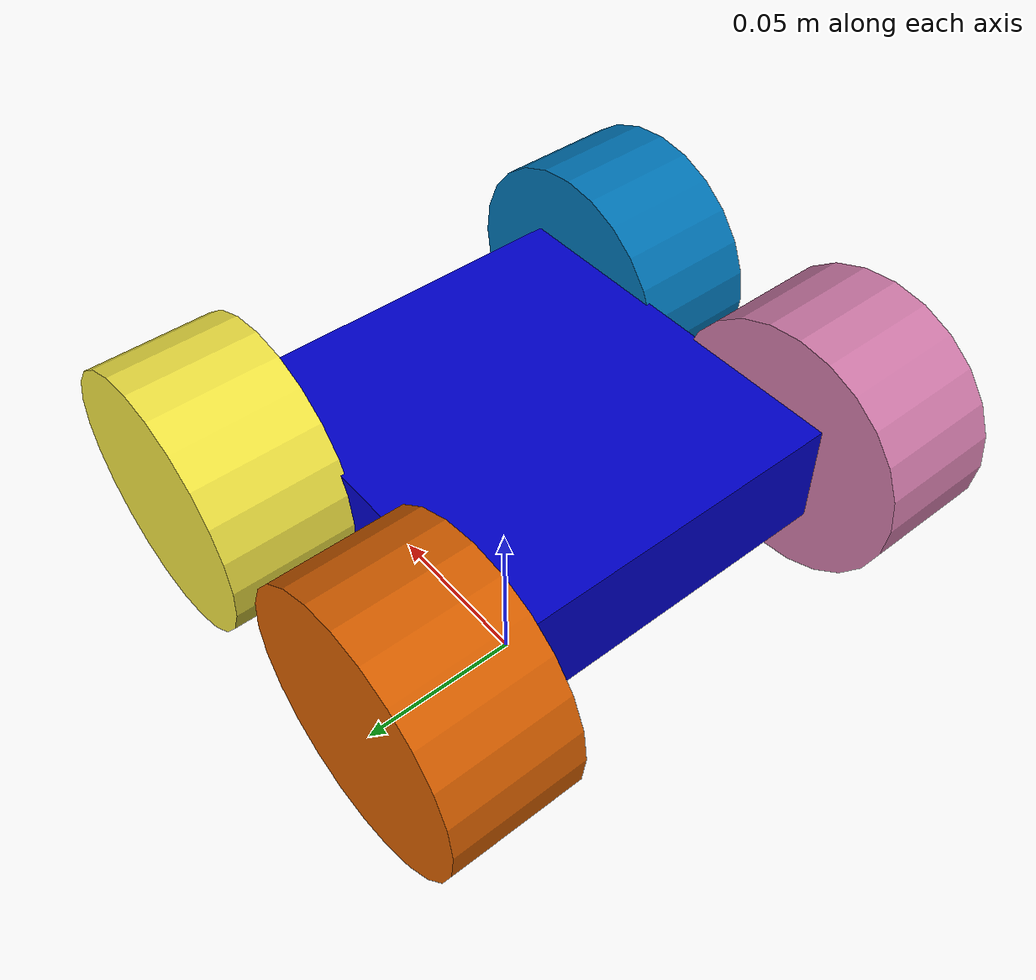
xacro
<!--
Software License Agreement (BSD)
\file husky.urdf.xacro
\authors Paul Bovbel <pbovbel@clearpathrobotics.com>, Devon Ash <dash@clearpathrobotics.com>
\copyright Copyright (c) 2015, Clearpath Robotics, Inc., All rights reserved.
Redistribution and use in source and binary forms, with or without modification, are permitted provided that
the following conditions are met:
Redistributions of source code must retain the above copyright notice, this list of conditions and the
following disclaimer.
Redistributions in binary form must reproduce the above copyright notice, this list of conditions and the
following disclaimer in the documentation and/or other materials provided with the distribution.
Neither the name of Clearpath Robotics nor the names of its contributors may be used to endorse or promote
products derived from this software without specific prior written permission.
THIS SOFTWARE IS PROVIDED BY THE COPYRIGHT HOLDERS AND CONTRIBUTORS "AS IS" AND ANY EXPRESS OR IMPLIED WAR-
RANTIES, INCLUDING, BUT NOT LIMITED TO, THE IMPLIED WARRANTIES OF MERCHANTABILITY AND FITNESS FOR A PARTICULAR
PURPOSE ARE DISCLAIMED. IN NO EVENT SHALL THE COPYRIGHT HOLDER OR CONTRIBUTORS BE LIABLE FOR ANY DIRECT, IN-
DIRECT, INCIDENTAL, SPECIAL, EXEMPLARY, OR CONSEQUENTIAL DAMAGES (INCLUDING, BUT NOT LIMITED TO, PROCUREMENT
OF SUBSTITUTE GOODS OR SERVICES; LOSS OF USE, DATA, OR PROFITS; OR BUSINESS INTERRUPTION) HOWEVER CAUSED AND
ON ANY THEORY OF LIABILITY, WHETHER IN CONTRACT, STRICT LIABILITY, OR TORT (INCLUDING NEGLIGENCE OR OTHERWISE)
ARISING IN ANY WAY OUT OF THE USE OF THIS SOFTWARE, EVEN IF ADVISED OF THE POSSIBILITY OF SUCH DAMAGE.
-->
<?xml version="1.0"?>

<robot name="mborg" xmlns:xacro="http://ros.org/wiki/xacro">

  <xacro:arg name="robot_namespace" default="/" />

  <!-- Included URDF/XACRO Files -->
  <xacro:include filename="$(find mborg_description)/urdf/wheel.urdf.xacro" />

   <xacro:property name="M_PI" value="3.14159"/>

  <material name="blue">
        <color rgba="0 0 0.8 1"/>
  </material>

   <material name="white">
        <color rgba="1 1 1 1"/>
   </material>

  <!-- Base Size -->
  <xacro:property name="base_height" value="0.043" />
  <xacro:property name="base_width" value="0.143" />
  <xacro:property name="base_length" value="0.154" />

  <!-- Wheel Mounting Positions -->
  <xacro:property name="x_joint_offset" value="0.0165" />
  <xacro:property name="y_joint_offset" value="0.0235" />
  <xacro:property name="z_joint_offset" value="0.021" />

  <!-- Wheel Properties -->
  <xacro:property name="wheel_length" value="0.05" />
  <xacro:property name="wheel_radius" value="0.0525" />

  <!-- Base link is the center of the robot's bottom plate -->
  <link name="base_link">
    <visual>
      <origin xyz="${base_length*1/2} ${-base_width*1/2} ${-base_height*1/2} " rpy="0 0 0" />
      <geometry>
         <box size="${base_length} ${base_width} ${base_height}"/>
      </geometry>
      <material name="blue"/>
    </visual>
    <collision>
      <origin xyz="${base_length*1/2} ${-base_width*1/2} ${-base_height*1/2} " rpy="0 0 0" />
      <geometry>
        <box size="${base_length} ${base_width} ${base_height}"/>
      </geometry>
    </collision>
  </link>

  <!-- Base footprint is on the ground under the robot -->
  <link name="base_footprint"/>

  <joint name="base_footprint_joint" type="fixed">
    <origin xyz="${1/2*base_length} ${-1/2* base_width} ${ - z_joint_offset  - wheel_radius}" rpy="0 0 0" />
    <parent link="base_link" />
    <child link="base_footprint" />
  </joint>

  <!-- Inertial link stores the robot's inertial information -->

  <link name="inertial_link">
    <inertial>
      <mass value="1.8788" />
      <origin xyz="-0.00065 -0.085 0.062" />
      <inertia ixx="0.6022" ixy="-0.02364" ixz="-0.1197" iyy="1.7386" iyz="-0.001544" izz="2.0296" />
    </inertial>
  </link>

  <joint name="inertial_joint" type="fixed">
    <origin xyz="0 0 0" rpy="0 0 0" />
    <parent link="base_link" />
    <child link="inertial_link" />
  </joint>

  <!-- Mborg wheel macros -->
  <xacro:mborg_wheel wheel_prefix="front_left">
    <origin xyz="${base_length - x_joint_offset} ${y_joint_offset} ${-z_joint_offset}" rpy="0 0 0" />
  </xacro:mborg_wheel>
  <xacro:mborg_wheel wheel_prefix="front_right">
    <origin xyz="${base_length - x_joint_offset} ${-base_width - y_joint_offset} ${-z_joint_offset}" rpy="0 0 0" />
  </xacro:mborg_wheel>
  <xacro:mborg_wheel wheel_prefix="rear_left">
    <origin xyz="${x_joint_offset} ${y_joint_offset} ${-z_joint_offset}" rpy="0 0 0" />
  </xacro:mborg_wheel>
  <xacro:mborg_wheel wheel_prefix="rear_right">
    <origin xyz="${x_joint_offset} ${-base_width - y_joint_offset} ${-z_joint_offset}" rpy="0 0 0" />
  </xacro:mborg_wheel>

</robot>

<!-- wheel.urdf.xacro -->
<robot xmlns:xacro="http://ros.org/wiki/xacro" name="mborg_wheel">

	<xacro:macro name="mborg_wheel" params="wheel_prefix *joint_pose">
		<link name="${wheel_prefix}_wheel_link">
			<inertial>
				<mass value="0.105425" />
				<origin xyz="0 0 0" />
				<inertia  ixx="0.02467" ixy="0" ixz="0" iyy="0.04411" iyz="0" izz="0.02467" />
			</inertial>
            <visual>
				<origin xyz="0 0 0" rpy="${M_PI/2} 0 0" />
				<geometry>
					<cylinder length="${wheel_length}" radius="${wheel_radius}" />
				</geometry>

		    </visual>
			<collision>
				<origin xyz="0 0 0" rpy="${M_PI/2} 0 0" />
				<geometry>
					<cylinder length="${wheel_length}" radius="${wheel_radius}" />
				</geometry>
			</collision>
		</link>
		<joint name="${wheel_prefix}_wheel" type="continuous">
			<parent link="base_link"/>
			<child link="${wheel_prefix}_wheel_link"/>
			<xacro:insert_block name="joint_pose"/>
			<axis xyz="0 1 0" rpy="0 0 0" />
		</joint>

		<transmission name="${wheel_prefix}_wheel_trans" type="SimpleTransmission">
			<type>transmission_interface/SimpleTransmission</type>
			<actuator name="${wheel_prefix}_wheel_motor">
				<mechanicalReduction>1</mechanicalReduction>
			</actuator>
			<joint name="${wheel_prefix}_wheel">
				<hardwareInterface>hardware_interface/VelocityJointInterface</hardwareInterface>
			</joint>
		</transmission>

	</xacro:macro>
</robot>
